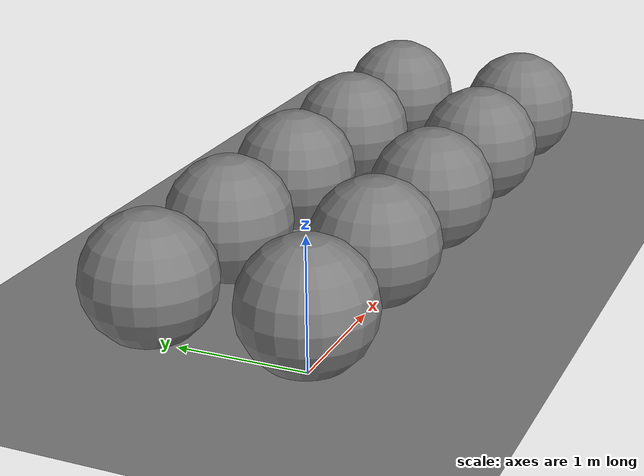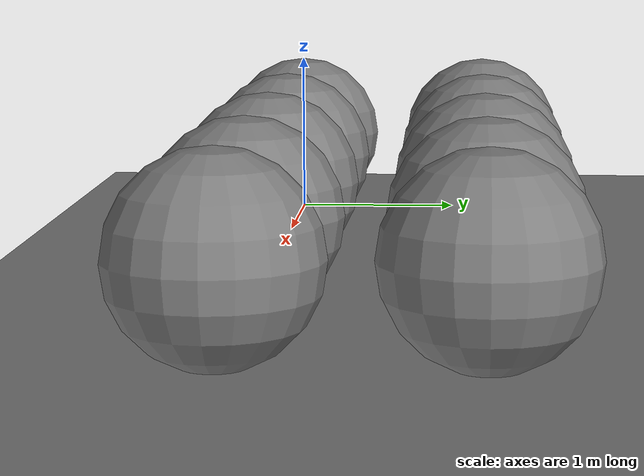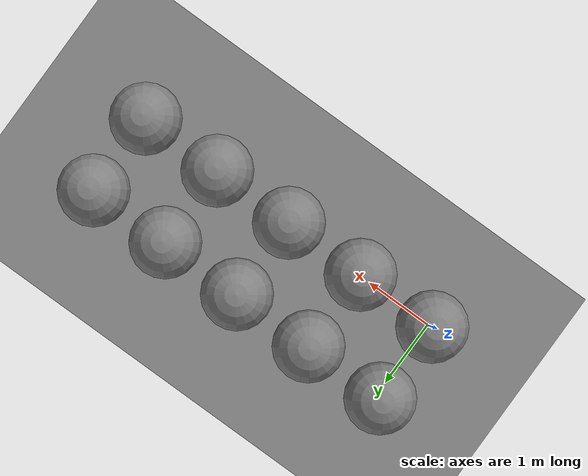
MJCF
<mujoco model="scale_10">
            <option gravity="0 0 -9.81" timestep="0.001"/>
            <worldbody>
                <geom name="floor" type="plane" size="10 10 0.1"/>
                <body name="s0" pos="0 0 0.5"><joint type="free"/><geom type="sphere" size="0.5" mass="1"/></body>
                <body name="s1" pos="1.2 0 0.5"><joint type="free"/><geom type="sphere" size="0.5" mass="1"/></body>
                <body name="s2" pos="2.4 0 0.5"><joint type="free"/><geom type="sphere" size="0.5" mass="1"/></body>
                <body name="s3" pos="3.6 0 0.5"><joint type="free"/><geom type="sphere" size="0.5" mass="1"/></body>
                <body name="s4" pos="4.8 0 0.5"><joint type="free"/><geom type="sphere" size="0.5" mass="1"/></body>
                <body name="s5" pos="0 1.2 0.5"><joint type="free"/><geom type="sphere" size="0.5" mass="1"/></body>
                <body name="s6" pos="1.2 1.2 0.5"><joint type="free"/><geom type="sphere" size="0.5" mass="1"/></body>
                <body name="s7" pos="2.4 1.2 0.5"><joint type="free"/><geom type="sphere" size="0.5" mass="1"/></body>
                <body name="s8" pos="3.6 1.2 0.5"><joint type="free"/><geom type="sphere" size="0.5" mass="1"/></body>
                <body name="s9" pos="4.8 1.2 0.5"><joint type="free"/><geom type="sphere" size="0.5" mass="1"/></body>
            </worldbody>
        </mujoco>
